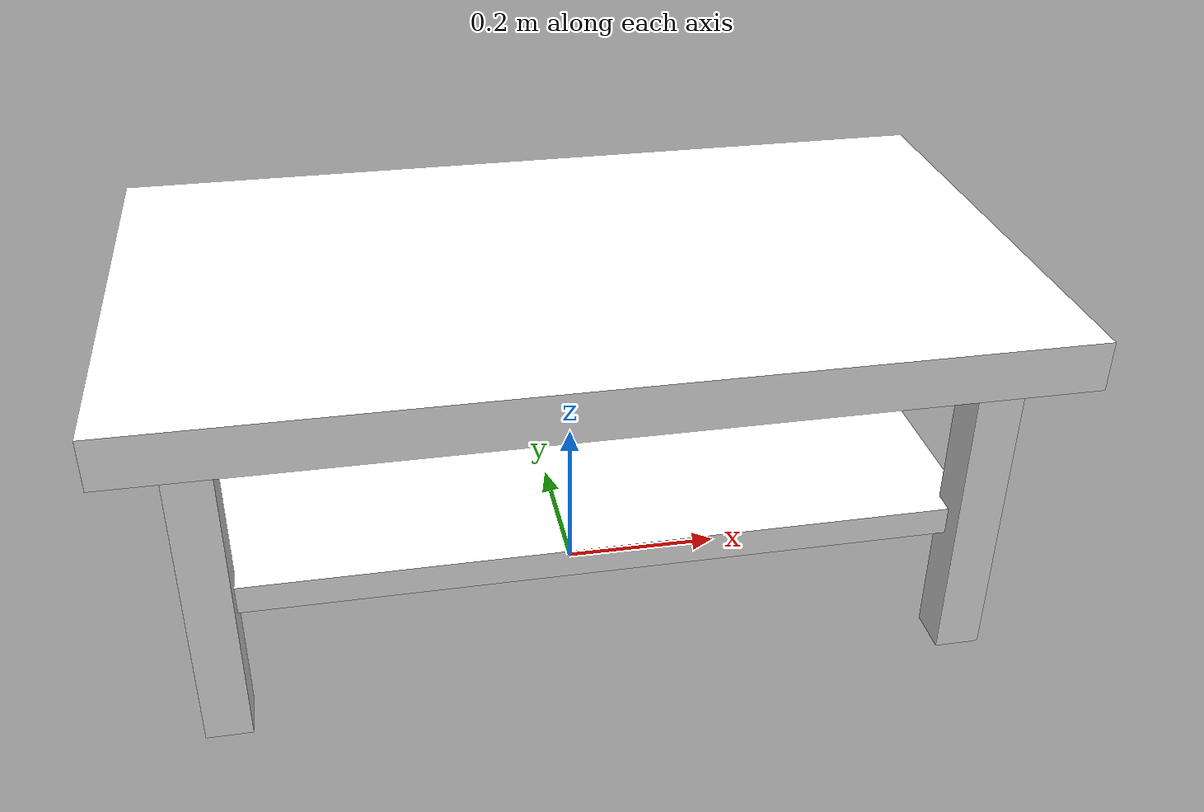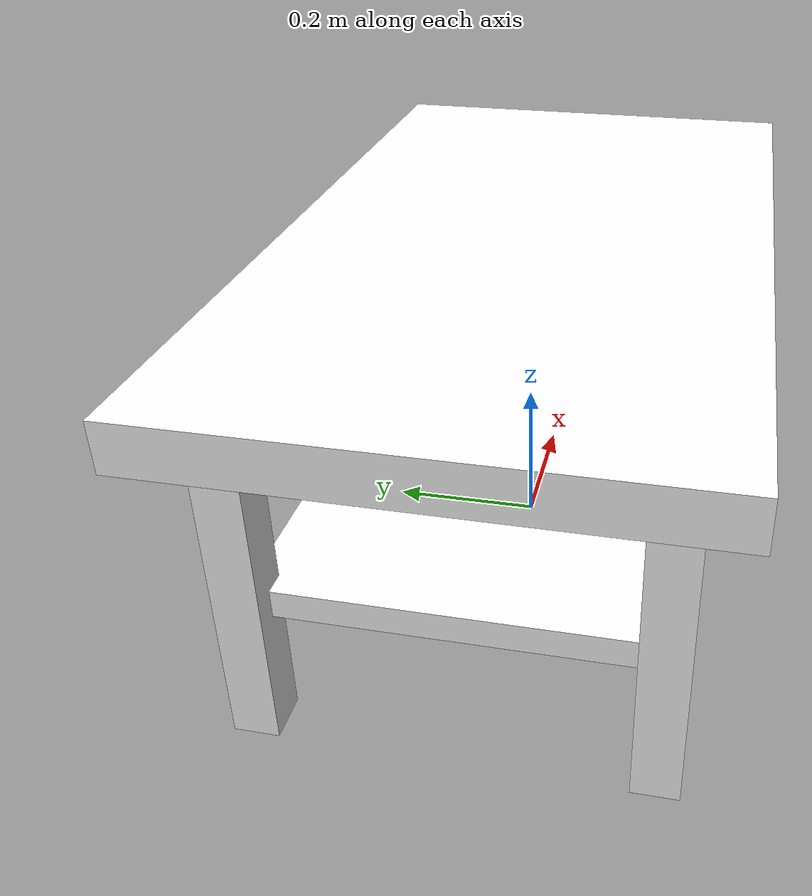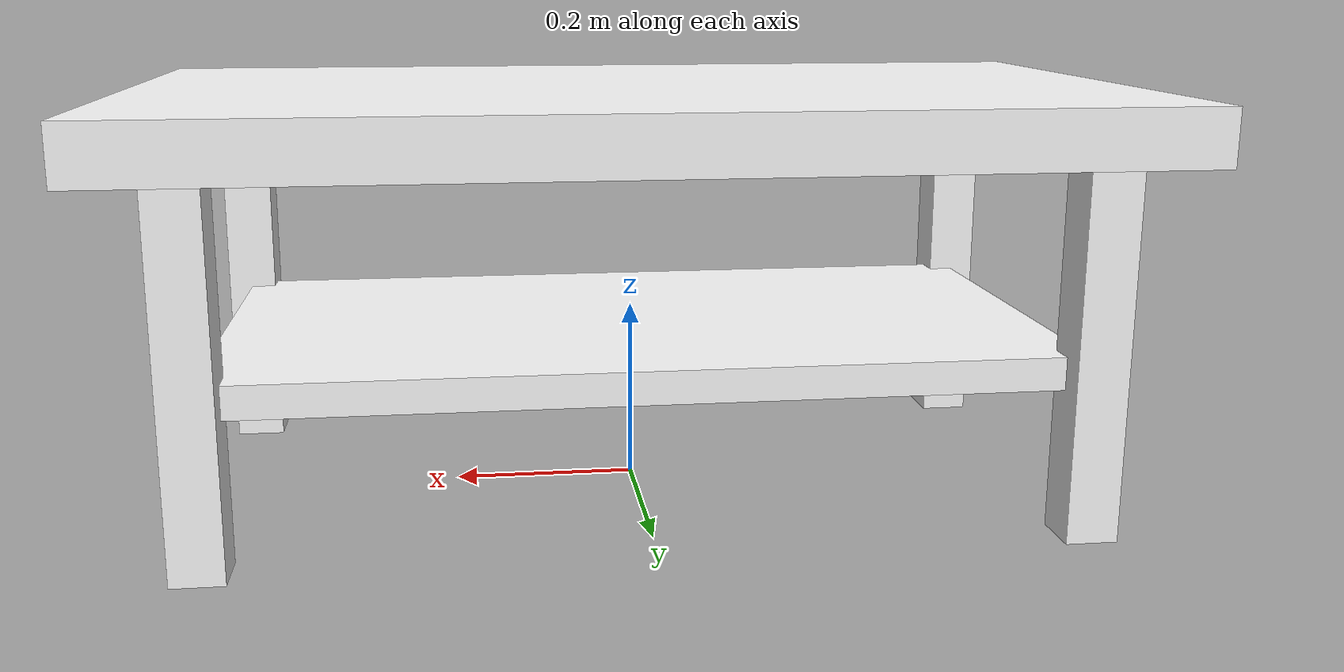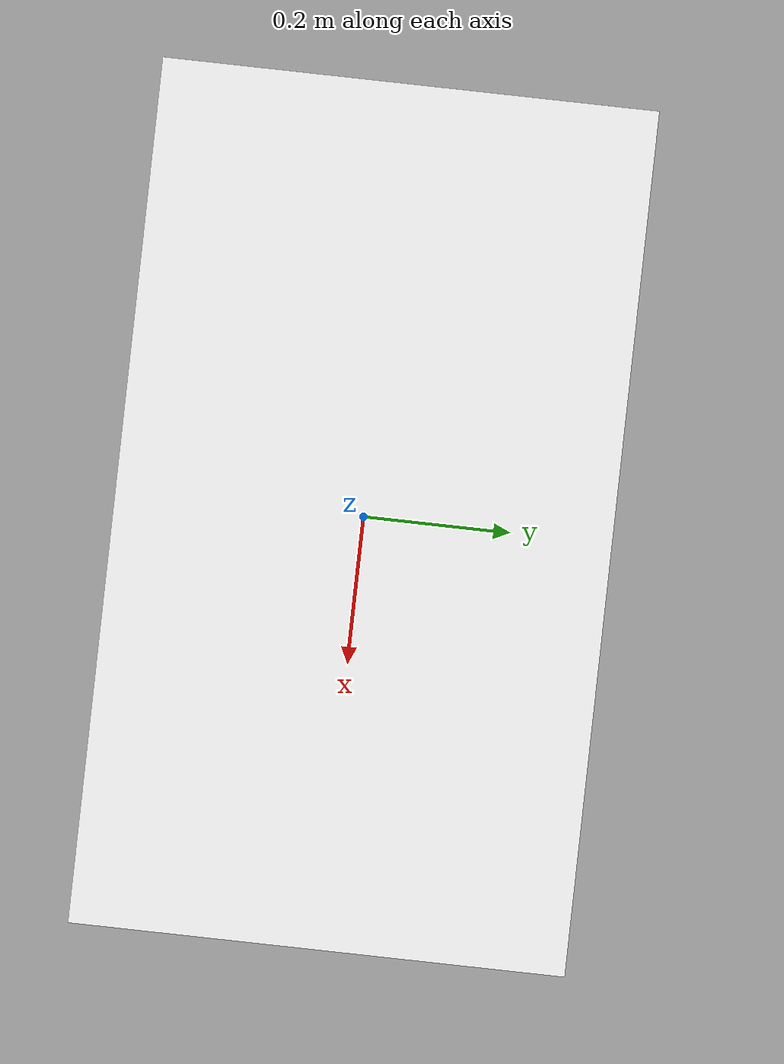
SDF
<?xml version="1.0"?>
<sdf version="1.9">
  <model name="coffee_table">
    <static>true</static>
    <link name="body">

      <collision name="top_collision">
        <pose>0 0 0.42 0 0 0</pose>
        <geometry><box><size>1.08 0.62 0.06</size></box></geometry>
      </collision>
      <visual name="top_visual">
        <pose>0 0 0.42 0 0 0</pose>
        <geometry><box><size>1.08 0.62 0.06</size></box></geometry>
        <material>
          <ambient>1 1 1 1</ambient>
          <diffuse>1 1 1 1</diffuse>
          <specular>0.05 0.05 0.05 1</specular>
          <pbr>
            <metal>
              <albedo_map>materials/textures/wood_albedo.png</albedo_map>
              <normal_map>materials/textures/wood_normal.png</normal_map>
              <roughness_map>materials/textures/wood_roughness.png</roughness_map>
              <metalness>0.0</metalness>
            </metal>
          </pbr>
        </material>
      </visual>

      <collision name="shelf_collision">
        <pose>0 0 0.17 0 0 0</pose>
        <geometry><box><size>0.90 0.46 0.035</size></box></geometry>
      </collision>
      <visual name="shelf_visual">
        <pose>0 0 0.17 0 0 0</pose>
        <geometry><box><size>0.90 0.46 0.035</size></box></geometry>
        <material>
          <ambient>1 1 1 1</ambient>
          <diffuse>1 1 1 1</diffuse>
          <specular>0.05 0.05 0.05 1</specular>
          <pbr>
            <metal>
              <albedo_map>materials/textures/wood_albedo.png</albedo_map>
              <normal_map>materials/textures/wood_normal.png</normal_map>
              <roughness_map>materials/textures/wood_roughness.png</roughness_map>
              <metalness>0.0</metalness>
            </metal>
          </pbr>
        </material>
      </visual>

      <collision name="leg_fl">
        <pose>0.45 0.23 0.21 0 0 0</pose>
        <geometry><box><size>0.055 0.055 0.43</size></box></geometry>
      </collision>
      <collision name="leg_fr">
        <pose>0.45 -0.23 0.21 0 0 0</pose>
        <geometry><box><size>0.055 0.055 0.43</size></box></geometry>
      </collision>
      <collision name="leg_bl">
        <pose>-0.45 0.23 0.21 0 0 0</pose>
        <geometry><box><size>0.055 0.055 0.43</size></box></geometry>
      </collision>
      <collision name="leg_br">
        <pose>-0.45 -0.23 0.21 0 0 0</pose>
        <geometry><box><size>0.055 0.055 0.43</size></box></geometry>
      </collision>

      <visual name="leg_fl_visual">
        <pose>0.45 0.23 0.21 0 0 0</pose>
        <geometry><box><size>0.055 0.055 0.43</size></box></geometry>
        <material><ambient>1 1 1 1</ambient><diffuse>1 1 1 1</diffuse><specular>0.05 0.05 0.05 1</specular><pbr><metal><albedo_map>materials/textures/wood_albedo.png</albedo_map><normal_map>materials/textures/wood_normal.png</normal_map><roughness_map>materials/textures/wood_roughness.png</roughness_map><metalness>0.0</metalness></metal></pbr></material>
      </visual>
      <visual name="leg_fr_visual">
        <pose>0.45 -0.23 0.21 0 0 0</pose>
        <geometry><box><size>0.055 0.055 0.43</size></box></geometry>
        <material><ambient>1 1 1 1</ambient><diffuse>1 1 1 1</diffuse><specular>0.05 0.05 0.05 1</specular><pbr><metal><albedo_map>materials/textures/wood_albedo.png</albedo_map><normal_map>materials/textures/wood_normal.png</normal_map><roughness_map>materials/textures/wood_roughness.png</roughness_map><metalness>0.0</metalness></metal></pbr></material>
      </visual>
      <visual name="leg_bl_visual">
        <pose>-0.45 0.23 0.21 0 0 0</pose>
        <geometry><box><size>0.055 0.055 0.43</size></box></geometry>
        <material><ambient>1 1 1 1</ambient><diffuse>1 1 1 1</diffuse><specular>0.05 0.05 0.05 1</specular><pbr><metal><albedo_map>materials/textures/wood_albedo.png</albedo_map><normal_map>materials/textures/wood_normal.png</normal_map><roughness_map>materials/textures/wood_roughness.png</roughness_map><metalness>0.0</metalness></metal></pbr></material>
      </visual>
      <visual name="leg_br_visual">
        <pose>-0.45 -0.23 0.21 0 0 0</pose>
        <geometry><box><size>0.055 0.055 0.43</size></box></geometry>
        <material><ambient>1 1 1 1</ambient><diffuse>1 1 1 1</diffuse><specular>0.05 0.05 0.05 1</specular><pbr><metal><albedo_map>materials/textures/wood_albedo.png</albedo_map><normal_map>materials/textures/wood_normal.png</normal_map><roughness_map>materials/textures/wood_roughness.png</roughness_map><metalness>0.0</metalness></metal></pbr></material>
      </visual>

    </link>
  </model>
</sdf>
